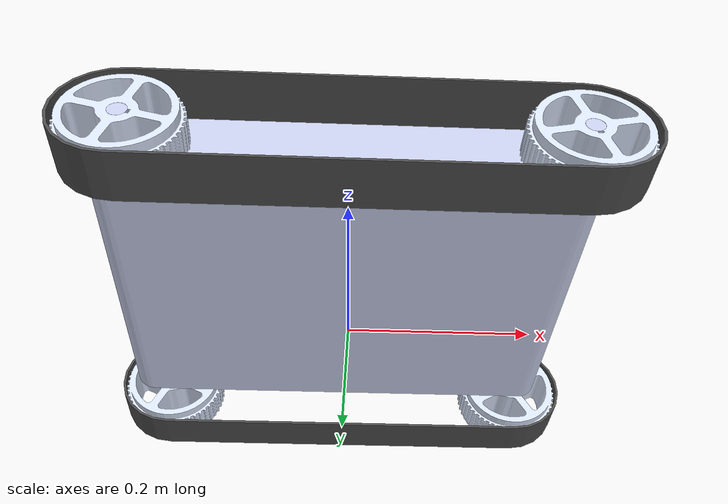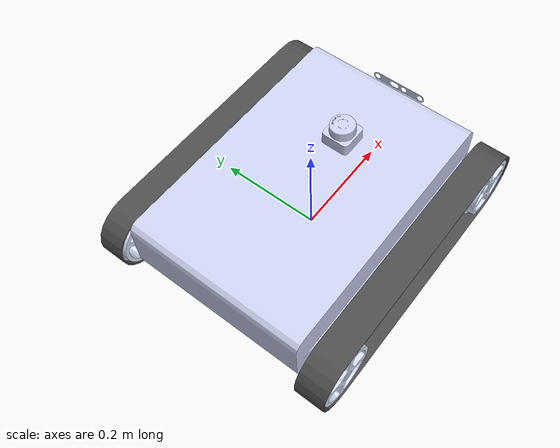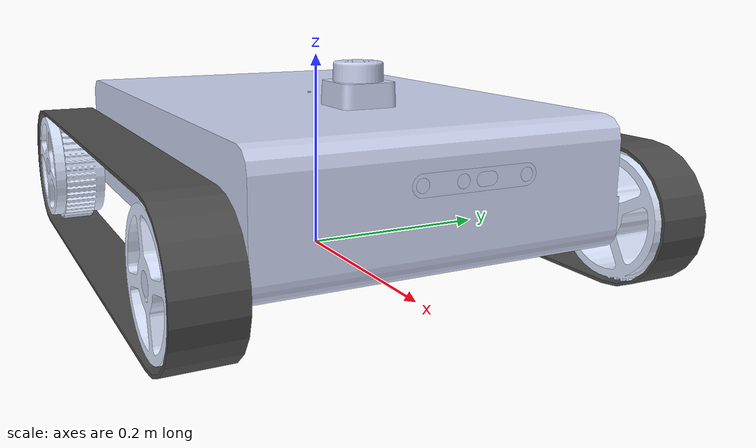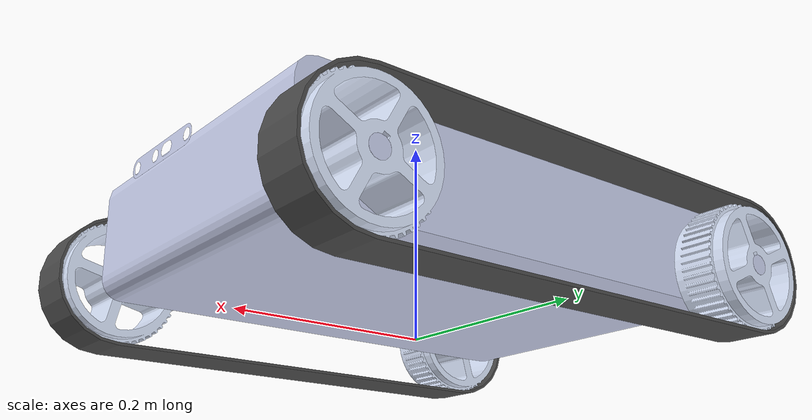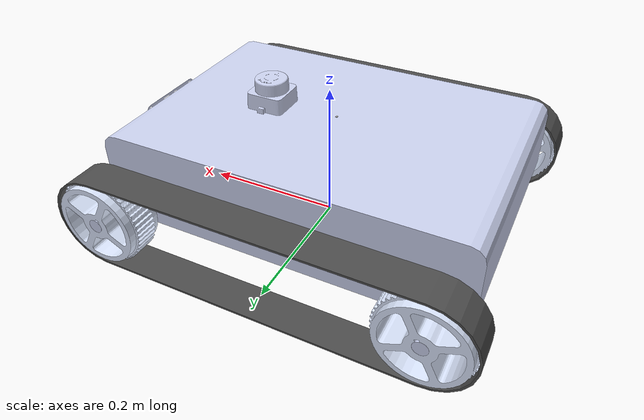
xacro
<?xml version="1.0"?>

<robot xmlns:xacro="http://www.ros.org/wiki/xacro"  name="crawler_description">

  <link
    name="base_link">
    <inertial>
      <origin
        xyz="-0.00703910246702688 -0.000837539533803048 0.010075447209685"
        rpy="0 0 0" />
      <mass
        value="21.7298438159499" />
      <inertia
        ixx="0.24800183576726"
        ixy="-3.57026723493335E-05"
        ixz="5.15090246517471E-05"
        iyy="0.508183725754325"
        iyz="0.000452422432613763"
        izz="0.70352937190044" />
    </inertial>
    <visual>
      <origin
        xyz="0 0 0.087"
        rpy="0 0 0" />
      <geometry>
        <mesh
          filename="package://crawler_description/meshes/base_link.STL" />
      </geometry>
      <material
        name="">
        <color
          rgba="0.792156862745098 0.819607843137255 0.933333333333333 1" />
      </material>
    </visual>
    <collision>
      <origin
        xyz="0 0 0.087"
        rpy="0 0 0" />
      <geometry>
        <mesh
          filename="package://crawler_description/meshes/base_link.STL" />
      </geometry>
    </collision>
  </link>
  <link
    name="font_lw">
    <inertial>
      <origin
        xyz="1.715E-05 -0.027 -3.1699E-05"
        rpy="0 0 0" />
      <mass
        value="0.8103" />
      <inertia
        ixx="0.0010675"
        ixy="-2.855E-19"
        ixz="-1.3622E-07"
        iyy="0.0017786"
        iyz="7.5478E-20"
        izz="0.0010676" />
    </inertial>
    <visual>
      <origin
        xyz="0 0 0.087"
        rpy="0 0 0" />
      <geometry>
        <mesh
          filename="package://crawler_description/meshes/font_lw.STL" />
      </geometry>
      <material
        name="">
        <color
          rgba="0.86667 0.9098 1 1" />
      </material>
    </visual>
    <collision>
      <origin
        xyz="0 0 0.087"
        rpy="0 0 0" />
      <geometry>
        <sphere radius="0.14982"/>
      </geometry>
    </collision>
  </link>
  <joint
    name="front_lj"
    type="continuous">
    <origin
      xyz="0.224 0.241 -0.025"
      rpy="0 0 0" />
    <parent
      link="base_link" />
    <child
      link="font_lw" />
    <axis
      xyz="0 1 0" />
    <limit
      lower="0"
      upper="0"
      effort="0"
      velocity="0" />
  </joint>
  <link
    name="front_rw">
    <inertial>
      <origin
        xyz="-8.31398520462212E-06 0.027 3.50687362817501E-05"
        rpy="0 0 0" />
      <mass
        value="0.810300971147523" />
      <inertia
        ixx="0.00106739400686659"
        ixy="1.62071139899744E-20"
        ixz="-7.30554873896416E-08"
        iyy="0.00177864343807052"
        iyz="2.04292838056139E-19"
        izz="0.00106768483819083" />
    </inertial>
    <visual>
      <origin
        xyz="0 0 0.087"
        rpy="0 0 0" />
      <geometry>
        <mesh
          filename="package://crawler_description/meshes/front_rw.STL" />
      </geometry>
      <material
        name="">
        <color
          rgba="0.866666666666667 0.909803921568627 1 1" />
      </material>
    </visual>
    <collision>
      <origin
        xyz="0 0 0.087"
        rpy="0 0 1.57" />
      <geometry>
        <sphere radius="0.14982"/>
      </geometry>
    </collision>
  </link>
  <joint
    name="front_rj"
    type="continuous">
    <origin
      xyz="0.224 -0.241 -0.025"
      rpy="0 0 0" />
    <parent
      link="base_link" />
    <child
      link="front_rw" />
    <axis
      xyz="0 -1 0" />
    <limit
      lower="0"
      upper="0"
      effort="0"
      velocity="0" />
  </joint>
  <link
    name="rear_lw">
    <inertial>
      <origin
        xyz="-1.51661689390403E-05 -0.027 -3.26944327690981E-05"
        rpy="0 0 0" />
      <mass
        value="0.810300971147523" />
      <inertia
        ixx="0.00106743432063593"
        ixy="-6.05051619617377E-20"
        ixz="1.24243354601579E-07"
        iyy="0.00177864343807052"
        iyz="-1.56291346747104E-19"
        izz="0.00106764452442149" />
    </inertial>
    <visual>
      <origin
        xyz="0 0 0.087"
        rpy="0 0 0" />
      <geometry>
        <mesh
          filename="package://crawler_description/meshes/rear_lw.STL" />
      </geometry>
      <material
        name="">
        <color
          rgba="0.866666666666667 0.909803921568627 1 1" />
      </material>
    </visual>
    <collision>
      <origin
        xyz="0 0 0.087"
        rpy="0 0 0" />
      <geometry>
        <sphere radius="0.14982"/>
      </geometry>
    </collision>
  </link>
  <joint
    name="rear_lj"
    type="continuous">
    <origin
      xyz="-0.224 0.241 -0.025"
      rpy="0 0 0" />
    <parent
      link="base_link" />
    <child
      link="rear_lw" />
    <axis
      xyz="0 1 0" />
    <limit
      lower="0"
      upper="0"
      effort="0"
      velocity="0" />
  </joint>
  <link
    name="rear_rw">
    <inertial>
      <origin
        xyz="-3.46892796005693E-05 0.027 9.77714146068592E-06"
        rpy="0 0 0" />
      <mass
        value="0.810300971147524" />
      <inertia
        ixx="0.00106767820565289"
        ixy="1.59097532244587E-19"
        ixz="-8.49827245494827E-08"
        iyy="0.00177864343807052"
        iyz="6.74123534685234E-20"
        izz="0.00106740063940453" />
    </inertial>
    <visual>
      <origin
        xyz="0 0 0.087"
        rpy="0 0 0" />
      <geometry>
        <mesh
          filename="package://crawler_description/meshes/rear_rw.STL" />
      </geometry>
      <material
        name="">
        <color
          rgba="0.866666666666667 0.909803921568627 1 1" />
      </material>
    </visual>
    <collision>
      <origin
        xyz="0 0 0.087"
        rpy="0 0 1.57" />
      <geometry>
        <sphere radius="0.14982"/>
      </geometry>
    </collision>
  </link>
  <joint
    name="rear_rj"
    type="continuous">
    <origin
      xyz="-0.224 -0.241 -0.025"
      rpy="0 0 0" />
    <parent
      link="base_link" />
    <child
      link="rear_rw" />
    <axis
      xyz="0 -1 0" />
    <limit
      lower="0"
      upper="0"
      effort="30"
      velocity="30" />
  </joint>
  <link
    name="lidar_link">
    <inertial>
      <origin
        xyz="3.53742851763594E-06 0.000115099330076087 -0.0233552371181321"
        rpy="0 0 0" />
      <mass
        value="0.10046205077288" />
      <inertia
        ixx="3.41937214679316E-05"
        ixy="2.13205778948088E-10"
        ixz="3.6291152025596E-10"
        iyy="3.42010786148691E-05"
        iyz="9.73147116595788E-09"
        izz="4.21147068405957E-05" />
    </inertial>
    <visual>
      <origin
        xyz="0 0 0.087"
        rpy="0 0 0" />
      <geometry>
        <mesh
          filename="package://crawler_description/meshes/lidar_link.STL" />
      </geometry>
      <material
        name="">
        <color
          rgba="0.792156862745098 0.819607843137255 0.933333333333333 1" />
      </material>
    </visual>
    <collision>
      <origin
        xyz="0 0 0.087"
        rpy="0 0 0" />
      <geometry>
        <mesh
          filename="package://crawler_description/meshes/lidar_link.STL" />
      </geometry>
    </collision>
  </link>
  <joint
    name="lidar_joint"
    type="fixed">
    <origin
      xyz="0.090667 0.00026794 0.1123"
      rpy="0 0 0" />
    <parent
      link="base_link" />
    <child
      link="lidar_link" />
    <axis
      xyz="0 0 0.087" />
  </joint>
  <link
    name="imu_link">
    <inertial>
      <origin
        xyz="1.72239381067262E-05 -1.86594203376725E-05 -0.000505961173496328"
        rpy="0 0 0" />
      <mass
        value="9.03345009183015E-06" />
      <inertia
        ixx="7.55386369994973E-12"
        ixy="-3.93145866833759E-14"
        ixz="1.52920786858737E-14"
        iyy="7.56016476574192E-12"
        iyz="-1.65665553526972E-14"
        izz="1.35874510536414E-11" />
    </inertial>
    <visual>
      <origin
        xyz="0 0 0.087"
        rpy="0 0 0" />
      <geometry>
        <mesh
          filename="package://crawler_description/meshes/imu_link.STL" />
      </geometry>
      <material
        name="">
        <color
          rgba="0.749019607843137 0.749019607843137 0.749019607843137 1" />
      </material>
    </visual>
    <collision>
      <origin
        xyz="0 0 0.087"
        rpy="0 0 0" />
      <geometry>
        <mesh
          filename="package://crawler_description/meshes/imu_link.STL" />
      </geometry>
    </collision>
  </link>
  <joint
    name="imu_joint"
    type="fixed">
    <origin
      xyz="-0.0088104 -0.0031329 0.07362"
      rpy="0 0 0" />
    <parent
      link="base_link" />
    <child
      link="imu_link" />
    <axis
      xyz="0 0 0.087" />
  </joint>
  <link
    name="left_belt_link">
    <inertial>
      <origin
        xyz="-1.38890281545954E-16 0.214 -0.025"
        rpy="0 0 0" />
      <mass
        value="0.195189817846963" />
      <inertia
        ixx="0.000726421753778775"
        ixy="3.8648287136937E-19"
        ixz="1.65519976716445E-18"
        iyy="0.00722882751707719"
        iyz="-3.41498357370188E-20"
        izz="0.00658373485406798" />
    </inertial>
    <visual>
      <origin
        xyz="0 0 0.0"
        rpy="0 0 0" />
      <geometry>
        <mesh
          filename="package://crawler_description/meshes/left_belt_link.STL" />
      </geometry>
      <material
        name="">
        <color
          rgba="0.298039215686275 0.298039215686275 0.298039215686275 1" />
      </material>
    </visual>
    <collision>
      <origin
        xyz="0 0 0.087"
        rpy="0 0 0" />
      <geometry>
        <mesh
          filename="package://crawler_description/meshes/left_belt_link.STL" />
      </geometry>
    </collision>
  </link>
  <joint
    name="left_belt_joint"
    type="fixed">
    <origin
      xyz="0 0 0.087"
      rpy="0 0 0" />
    <parent
      link="base_link" />
    <child
      link="left_belt_link" />
    <axis
      xyz="0 0 0.087" />
  </joint>
  <link
    name="right_belt_link">
    <inertial>
      <origin
        xyz="5.18128837727814E-16 -0.2145 -0.0249999999999989"
        rpy="0 0 0" />
      <mass
        value="0.222516392345537" />
      <inertia
        ixx="0.000842009530796705"
        ixy="2.44245500203075E-18"
        ixz="8.16412702478001E-18"
        iyy="0.00824086336946803"
        iyz="-3.0436798641957E-33"
        izz="0.00751934646512643" />
    </inertial>
    <visual>
      <origin
        xyz="0 0 0.087"
        rpy="0 0 0" />
      <geometry>
        <mesh
          filename="package://crawler_description/meshes/right_belt_link.STL" />
      </geometry>
      <material
        name="">
        <color
          rgba="0.298039215686275 0.298039215686275 0.298039215686275 1" />
      </material>
    </visual>
    <collision>
      <origin
        xyz="0 0 0.0"
        rpy="0 0 0" />
      <geometry>
        <mesh
          filename="package://crawler_description/meshes/right_belt_link.STL" />
      </geometry>
    </collision>
  </link>
  <joint
    name="right_belt_joint"
    type="fixed">
    <origin
      xyz="0 0 0.0"
      rpy="0 0 0" />
    <parent
      link="base_link" />
    <child
      link="right_belt_link" />
    <axis
      xyz="0 0 0.087" />
  </joint>
  <link
    name="realsense_link">
    <inertial>
      <origin
        xyz="-0.000562499999999966 -0.000501072127407474 1.24505187286406E-06"
        rpy="0 0 0" />
      <mass
        value="3.69692626267955E-05" />
      <inertia
        ixx="3.80548758633584E-08"
        ixy="-6.09327055012708E-24"
        ixz="2.59345743460586E-26"
        iyy="1.22919470785899E-09"
        iyz="8.84498420989037E-11"
        izz="3.68256850064643E-08" />
    </inertial>
    <visual>
      <origin
        xyz="0 0 0.087"
        rpy="0 0 0" />
      <geometry>
        <mesh
          filename="package://crawler_description/meshes/realsense_link.STL" />
      </geometry>
      <material
        name="">
        <color
          rgba="0.792156862745098 0.819607843137255 0.933333333333333 1" />
      </material>
    </visual>
    <collision>
      <origin
        xyz="0 0 0.087"
        rpy="0 0 0" />
      <geometry>
        <mesh
          filename="package://crawler_description/meshes/realsense_link.STL" />
      </geometry>
    </collision>
  </link>
  <joint
    name="realsense_j"
    type="fixed">
    <origin
      xyz="0.27754 0.00088472 0.037078"
      rpy="0 0 0" />
    <parent
      link="base_link" />
    <child
      link="realsense_link" />
    <axis
      xyz="0 0 0.087" />
  </joint>
</robot>
